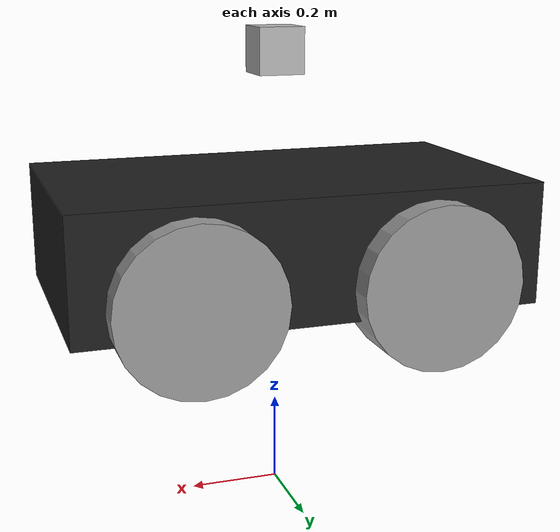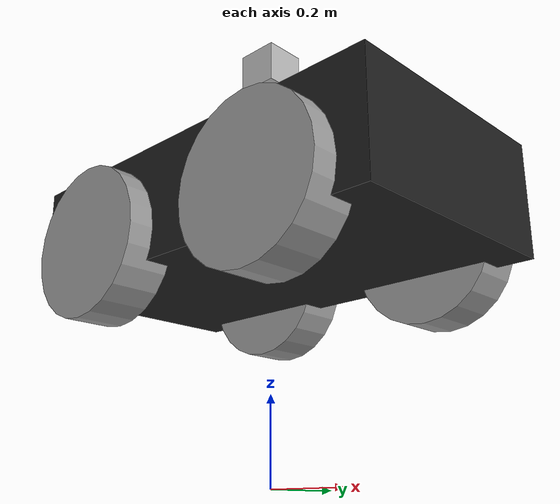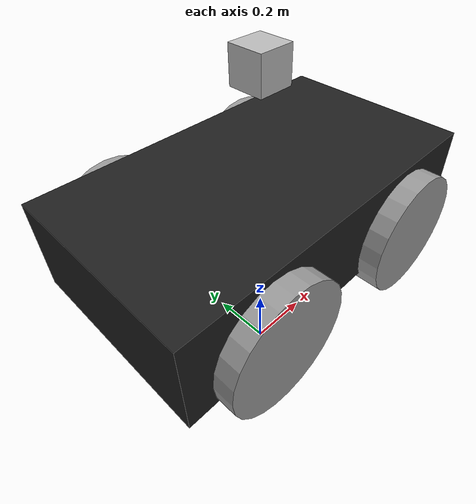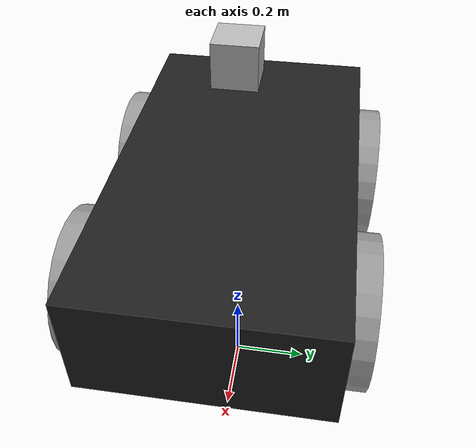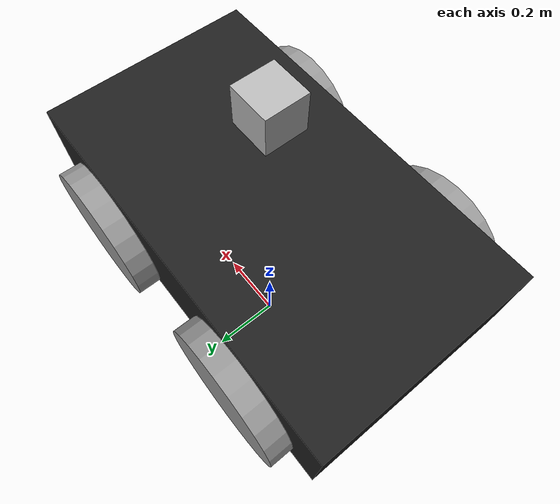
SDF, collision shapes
<?xml version='1.0'?>
<sdf version='1.6'>
  <model name="rover_bot">
    <pose>0 0 0.5 0 0 0</pose>
    <include>
      <uri>model://rover_ardupilot</uri>
      <pose>0 0 0 0 0 0</pose>
    </include>

    <!--front proximity sensor start-->
    <link name="ultrasonic_1_link">
      <pose>0 0 0.5 0 0 0</pose>
      <collision name="collision">
        <geometry>
          <box>
            <size>0.1 0.1 0.1</size>
          </box>
        </geometry>
      </collision>
      <visual name="visual">
        <geometry>
          <box>
            <size>0.1 0.1 0.1</size>
          </box>
        </geometry>
      </visual>
      <sensor name="lidar" type="ray">
        <pose>0.05 0 0 0 0 0</pose>
        <always_on>true</always_on>
        <visualize>true</visualize>
        <update_rate>5</update_rate>
        <ray>
          <scan>
            <horizontal>
              <samples>5</samples>
              <resolution>1.000000</resolution>
              <min_angle>-0.05</min_angle>
              <max_angle>0.05</max_angle>
            </horizontal>
            <vertical>
              <samples>5</samples>
              <resolution>1.000000</resolution>
              <min_angle>-0.01</min_angle>
              <max_angle>0.01</max_angle>
            </vertical>
          </scan>
          <range>
            <min>0.5</min>
            <max>5</max>
            <resolution>0.01</resolution>
          </range>
          <noise>
            <type>gaussian</type>
            <mean>0.0</mean>
            <stddev>0.01</stddev>
          </noise>
        </ray>
        <plugin name="scan" filename="libgazebo_ros_ray_sensor.so">
          <ros>
            <remapping>~/out:=ultrasonic_sensor_1</remapping>
          </ros>
          <output_type>sensor_msgs/Range</output_type>
          <radiation_type>ultrasound</radiation_type>
          <frame_name>ultrasonic_1_link</frame_name>
        </plugin>
      </sensor>
    </link>
    <joint name="prox1_body" type='fixed'>
      <parent>rover_ardupilot::husky::base_link</parent>
      <child>ultrasonic_1_link</child>
    </joint>
    <!--front proximity sensor end-->

    <!-- region camera front-->
    <link name="front_camera_link">
      <pose>0 0 0.5 0 0 0</pose>
      <frame name="camera_optical" attached_to="camera_link">
        <pose relative_to="front_camera_link">0.05 0 0 -1.575 0 -1.575</pose>
      </frame>
      <collision name="collision">
        <geometry>
          <box>
            <size>0.1 0.1 0.1</size>
          </box>
        </geometry>
      </collision>
      <visual name="visual">
        <geometry>
          <box>
            <size>0.1 0.1 0.1</size>
          </box>
        </geometry>
      </visual>
      <sensor name="front_camera" type="camera">
        <pose>0.05 0 0 0 0 0</pose>
        <camera>
          <horizontal_fov>1.047</horizontal_fov>
          <image>
            <width>320</width>
            <height>240</height>
          </image>
          <clip>
            <near>0.1</near>
            <far>100</far>
          </clip>
        </camera>
        <always_on>1</always_on>
        <update_rate>15</update_rate>
        <visualize>true</visualize>
        <plugin name="camera" filename="libgazebo_ros_camera.so">
          <frame_name>camera_optical</frame_name>
        </plugin>
      </sensor>
    </link>
    <joint name="camera2body" type='fixed'>
      <parent>rover_ardupilot::husky::base_link</parent>
      <child>front_camera_link</child>
    </joint>
    <!-- endregion camera front-->
  </model>
</sdf>

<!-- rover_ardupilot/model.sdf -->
<sdf version='1.6'>
  <model name="rover_ardupilot">
    <pose>0 0 0.5 0 0 0</pose>
    <include>
      <uri>model://husky</uri>
      <pose>0 0 0 0 0 0</pose>
    </include>

    <link name="cam_link">
      <pose>0 0 0 0 0 0 </pose>
      <inertial>
        <mass>0.01</mass>
        <inertia>
          <ixx>0.0001</ixx>
          <iyy>0.0001</iyy>
          <izz>0.0001</izz>
        </inertia>
      </inertial>
    <sensor name="chase_cam" type="camera">
      <pose>-3 -1 1.4 0 0.37 0</pose>
      <camera>
        <horizontal_fov>1.2</horizontal_fov>
        <image>
          <width>1920</width>
          <height>1080</height>
        </image>
        <clip>
          <near>0.1</near>
          <far>1000</far>
        </clip>
      </camera>
      <always_on>0</always_on>
      <update_rate>60</update_rate>
      <visualize>false</visualize>
    </sensor>
  </link>
    <joint name="camera_mount" type="fixed">
      <child>cam_link</child>
      <parent>husky::base_link</parent>
      <axis>
        <xyz>0 0 1</xyz>
        <limit>
          <upper>0</upper>
          <lower>0</lower>
        </limit>
      </axis>
    </joint>

    <link name='imu_link'>
      <pose>0 0 0 0 0 0</pose>
      <inertial>
        <pose>0 0 0 0 0 0</pose>
        <mass>0.015</mass>
        <inertia>
          <ixx>1e-05</ixx>
          <ixy>0</ixy>
          <ixz>0</ixz>
          <iyy>1e-05</iyy>
          <iyz>0</iyz>
          <izz>1e-05</izz>
        </inertia>
      </inertial>
      <sensor name="imu_sensor" type="imu">
        <pose>0 0 0 3.141593 0 0</pose>
        <always_on>1</always_on>
        <update_rate>1000.0</update_rate>
      </sensor>
    </link>
    <joint name='imu_joint' type='revolute'>
      <child>imu_link</child>
      <parent>husky::base_link</parent>
      <axis>
        <xyz>1 0 0</xyz>
        <limit>
          <lower>0</lower>
          <upper>0</upper>
          <effort>0</effort>
          <velocity>0</velocity>
        </limit>
        <dynamics>
          <damping>0.7</damping>
        </dynamics>
        <use_parent_model_frame>1</use_parent_model_frame>
      </axis>
    </joint>

    <plugin name="ArduCopter_Plugin" filename="libArduPilotPlugin.so">
      <fdm_addr>127.0.0.1</fdm_addr>
      <fdm_port_in>9012</fdm_port_in>
      <fdm_port_out>9013</fdm_port_out>
      <!--
          Require by APM :
          Only change model and gazebo from XYZ to XY-Z coordinates
      -->
      <modelXYZToAirplaneXForwardZDown>0 0 0 3.141593 0 0</modelXYZToAirplaneXForwardZDown>
      <gazeboXYZToNED>0 0 0 3.141593 0 0</gazeboXYZToNED>
      <imuName>rover_ardupilot::imu_link::imu_sensor</imuName>
      <connectionTimeoutMaxCount>5</connectionTimeoutMaxCount>
      <!--
          incoming control command [0, 1]
          so offset it by 0 to get [0, 1]
          and divide max target by 1.
          offset = 0
          multiplier = 838 max rpm / 1 = 838
        -->
      <control channel="0">
        <type>VELOCITY</type>
        <offset>-0.5</offset>
        <p_gain>1</p_gain>
        <i_gain>0</i_gain>
        <d_gain>0</d_gain>
        <i_max>0</i_max>
        <i_min>0</i_min>
        <cmd_max>10</cmd_max>
        <cmd_min>-10</cmd_min>
        <jointName>husky::front_left_joint</jointName>
        <multiplier>70</multiplier>
      </control>
      <control channel="2">
        <type>VELOCITY</type>
        <offset>-0.5</offset>
        <p_gain>1</p_gain>
        <i_gain>0</i_gain>
        <d_gain>0</d_gain>
        <i_max>0</i_max>
        <i_min>0</i_min>
        <cmd_max>10</cmd_max>
        <cmd_min>-10</cmd_min>
        <jointName>husky::front_right_joint</jointName>
        <multiplier>70</multiplier>
      </control>
      <control channel="0">
        <type>VELOCITY</type>
        <offset>-0.5</offset>
        <p_gain>1</p_gain>
        <i_gain>0</i_gain>
        <d_gain>0</d_gain>
        <i_max>0</i_max>
        <i_min>0</i_min>
        <cmd_max>10</cmd_max>
        <cmd_min>-10</cmd_min>
        <jointName>husky::back_left_joint</jointName>
        <multiplier>70</multiplier>
      </control>
      <control channel="2">
        <type>VELOCITY</type>
        <offset>-0.5</offset>
        <p_gain>1</p_gain>
        <i_gain>0</i_gain>
        <d_gain>0</d_gain>
        <i_max>0</i_max>
        <i_min>0</i_min>
        <cmd_max>10</cmd_max>
        <cmd_min>-10</cmd_min>
        <jointName>husky::back_right_joint</jointName>
        <multiplier>70</multiplier>
      </control>
    </plugin>

  </model>
</sdf>

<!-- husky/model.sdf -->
<sdf version="1.5">
  <model name="husky">
    <pose>0 0 .5 0 0 0</pose>
    <!-- Main Chassis -->
    <link name="base_link">
      <!-- Physics -->
      <collision name="collision">
        <pose>0 0 0.1 0 0 0</pose>
        <geometry>
          <box>
            <size>1.0074 0.5709 0.2675</size>
          </box>
        </geometry>
      </collision>
      <inertial>
        <mass>33.855</mass>
        <pose>-0.0856132 -0.000839955 0.238145 0 0 0</pose>
        <inertia>
          <ixx>2.2343</ixx>
          <ixy>-0.023642</ixy>
          <ixz>0.275174</ixz>
          <iyy>3.42518</iyy>
          <iyz>0.00239624</iyz>
          <izz>2.1241</izz>
        </inertia>
      </inertial>
      <!-- Visual -->
      <!-- Base frame -->
      <visual name="base">
        <pose>0 0 0 0 0 0</pose>
        <geometry>
          <mesh>
            <uri>model://husky/meshes/base_link.stl</uri>
          </mesh>
        </geometry>
        <material>
          <script>
            <name>Gazebo/FlatBlack</name>
          </script>
        </material>
      </visual>
      <!-- Top Plate -->
      <visual name="top_plate">
        <pose>0 0 0 0 0 0</pose>
        <geometry>
          <mesh>
            <uri>model://husky/meshes/top_plate.stl</uri>
          </mesh>
        </geometry>
        <material>
          <script>
            <name>Gazebo/Yellow</name>
          </script>
        </material>
      </visual>
      <!-- Front Bumper -->
      <visual name="front_bumper">
        <pose>0.47 0 0.091 0 0 0</pose>
        <geometry>
          <mesh>
            <uri>model://husky/meshes/bumper.stl</uri>
          </mesh>
        </geometry>
        <material>
          <script>
            <name>Gazebo/FlatBlack</name>
          </script>
        </material>
      </visual>
      <!-- Rear Bumper -->
      <visual name="rear_bumper">
        <pose>-0.47 0 0.091 0 0 3.141</pose>
        <geometry>
          <mesh>
            <uri>model://husky/meshes/bumper.stl</uri>
          </mesh>
        </geometry>
        <material>
          <script>
            <name>Gazebo/FlatBlack</name>
          </script>
        </material>
      </visual>
      <!-- User Rail -->
      <visual name="user_rail">
        <pose>0.272 0 0.245 0 0 0</pose>
        <geometry>
          <mesh>
            <uri>model://husky/meshes/user_rail.stl</uri>
          </mesh>
        </geometry>
        <material>
          <script>
            <name>Gazebo/Grey</name>
          </script>
        </material>
      </visual>
    </link>
    <!-- Back Left Wheel -->
    <link name="back_left_wheel">
      <pose>-0.256 0.285475 0.035 0 0 0</pose>
      <inertial>
        <mass>2.6357</mass>
        <pose>0 0 0 0 0 0</pose>
        <inertia>
          <ixx>0.0246688</ixx>
          <ixy>0</ixy>
          <ixz>0</ixz>
          <iyy>0.0246688</iyy>
          <iyz>0</iyz>
          <izz>0.0441058</izz>
        </inertia>
      </inertial>
      <collision name="back_left_wheel_collision">
        <pose>0 0 0 -1.5707 0 0</pose>
        <geometry>
          <cylinder>
            <radius>0.17775</radius>
            <length>0.1143</length>
          </cylinder>
        </geometry>
        <surface>
          <friction>
            <ode>
              <mu>100000.0</mu>
              <mu2>100000.0</mu2>
              <slip1>0.0</slip1>
              <slip2>0.0</slip2>
            </ode>
          </friction>
        </surface>
      </collision>
      <visual name="back_left_wheel">
        <pose>0 0 0 -3.14159 0 0</pose>
        <geometry>
          <mesh>
            <uri>model://husky/meshes/wheel.stl</uri>
          </mesh>
        </geometry>
        <material>
          <script>
            <name>Gazebo/Grey</name>
          </script>
        </material>
      </visual>
    </link>
    <joint name="back_left_joint" type="revolute">
      <parent>base_link</parent>
      <child>back_left_wheel</child>
      <axis>
        <xyz>0 1 0</xyz>
        <use_parent_model_frame>true</use_parent_model_frame>
      </axis>
      <physics>
        <ode>
          <limit>
            <cfm>0.000000</cfm>
            <erp>0.900000</erp>
          </limit>
        </ode>
      </physics>
    </joint>
    <!-- Back Right Wheel -->
    <link name="back_right_wheel">
      <pose>-0.256 -0.285475 0.035 0 0 0</pose>
      <inertial>
        <mass>2.6357</mass>
        <pose>0 0 0 0 0 0</pose>
        <inertia>
          <ixx>0.0246688</ixx>
          <ixy>0</ixy>
          <ixz>0</ixz>
          <iyy>0.0246688</iyy>
          <iyz>0</iyz>
          <izz>0.0441058</izz>
        </inertia>
      </inertial>
      <collision name="back_right_wheel_collision">
        <pose>0 0 0 -1.5707 0 0</pose>
        <geometry>
          <cylinder>
            <radius>0.17775</radius>
            <length>0.1143</length>
          </cylinder>
        </geometry>
        <surface>
          <friction>
            <ode>
              <mu>100000.0</mu>
              <mu2>100000.0</mu2>
              <slip1>0.0</slip1>
              <slip2>0.0</slip2>
            </ode>
          </friction>
        </surface>
      </collision>
      <visual name="back_right_wheel">
        <pose>0 0 0 -3.14159 0 0</pose>
        <geometry>
          <mesh>
            <uri>model://husky/meshes/wheel.stl</uri>
          </mesh>
        </geometry>
        <material>
          <script>
            <name>Gazebo/Grey</name>
          </script>
        </material>
      </visual>
    </link>
    <joint name="back_right_joint" type="revolute">
      <parent>base_link</parent>
      <child>back_right_wheel</child>
      <axis>
        <xyz>0 1 0</xyz>
        <use_parent_model_frame>true</use_parent_model_frame>
      </axis>
      <physics>
        <ode>
          <limit>
            <cfm>0.000000</cfm>
            <erp>0.900000</erp>
          </limit>
        </ode>
      </physics>
    </joint>
    <!-- Front Left Wheel -->
    <link name="front_left_wheel">
      <pose>0.256 0.285475 0.035 0 0 0</pose>
      <inertial>
        <mass>2.6357</mass>
        <pose>0 0 0 0 0 0</pose>
        <inertia>
          <ixx>0.0246688</ixx>
          <ixy>0</ixy>
          <ixz>0</ixz>
          <iyy>0.0246688</iyy>
          <iyz>0</iyz>
          <izz>0.0441058</izz>
        </inertia>
      </inertial>
      <collision name="front_left_wheel_collision">
        <pose>0 0 0 -1.5707 0 0</pose>
        <geometry>
          <cylinder>
            <radius>0.17775</radius>
            <length>0.1143</length>
          </cylinder>
        </geometry>
        <surface>
          <friction>
            <ode>
              <mu>100000.0</mu>
              <mu2>100000.0</mu2>
              <slip1>0.0</slip1>
              <slip2>0.0</slip2>
            </ode>
          </friction>
        </surface>
      </collision>
      <visual name="front_left_wheel">
        <pose>0 0 0 -3.14159 0 0</pose>
        <geometry>
          <mesh>
            <uri>model://husky/meshes/wheel.stl</uri>
          </mesh>
        </geometry>
        <material>
          <script>
            <name>Gazebo/Grey</name>
          </script>
        </material>
      </visual>
    </link>
    <joint name="front_left_joint" type="revolute">
      <parent>base_link</parent>
      <child>front_left_wheel</child>
      <axis>
        <xyz>0 1 0</xyz>
        <use_parent_model_frame>true</use_parent_model_frame>
      </axis>
      <physics>
        <ode>
          <limit>
            <cfm>0.000000</cfm>
            <erp>0.900000</erp>
          </limit>
        </ode>
      </physics>
    </joint>
    <!-- Front Right Wheel -->
    <link name="front_right_wheel">
      <pose>0.256 -0.285475 0.035 0 0 0</pose>
      <inertial>
        <mass>2.6357</mass>
        <pose>0 0 0 0 0 0</pose>
        <inertia>
          <ixx>0.0246688</ixx>
          <ixy>0</ixy>
          <ixz>0</ixz>
          <iyy>0.0246688</iyy>
          <iyz>0</iyz>
          <izz>0.0441058</izz>
        </inertia>
      </inertial>
      <collision name="front_right_wheel_collision">
        <pose>0 0 0 -1.5707 0 0</pose>
        <geometry>
          <cylinder>
            <radius>0.17775</radius>
            <length>0.1143</length>
          </cylinder>
        </geometry>
        <surface>
          <friction>
            <ode>
              <mu>100000.0</mu>
              <mu2>100000.0</mu2>
              <slip1>0.0</slip1>
              <slip2>0.0</slip2>
            </ode>
          </friction>
        </surface>
      </collision>
      <visual name="front_right_wheel">
        <pose>0 0 0 -3.14159 0 0</pose>
        <geometry>
          <mesh>
            <uri>model://husky/meshes/wheel.stl</uri>
          </mesh>
        </geometry>
        <material>
          <script>
            <name>Gazebo/Grey</name>
          </script>
        </material>
      </visual>
    </link>
    <joint name="front_right_joint" type="revolute">
      <parent>base_link</parent>
      <child>front_right_wheel</child>
      <axis>
        <xyz>0 1 0</xyz>
        <use_parent_model_frame>true</use_parent_model_frame>
      </axis>
      <physics>
        <ode>
          <limit>
            <cfm>0.000000</cfm>
            <erp>0.900000</erp>
          </limit>
        </ode>
      </physics>
    </joint>

  </model>
</sdf>
